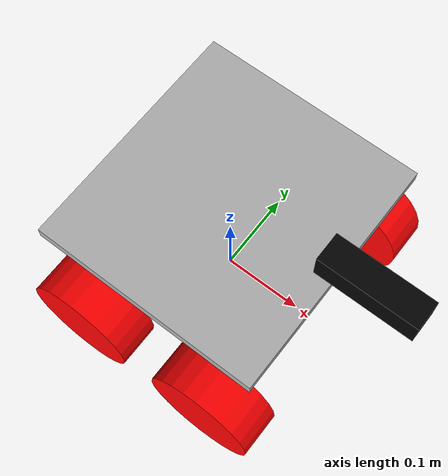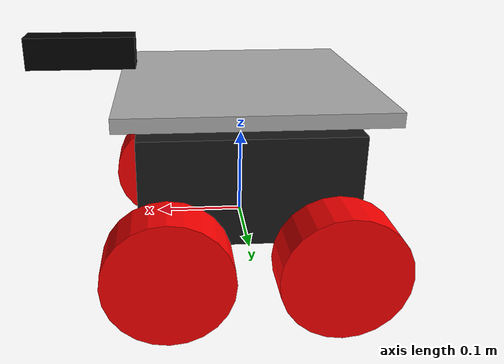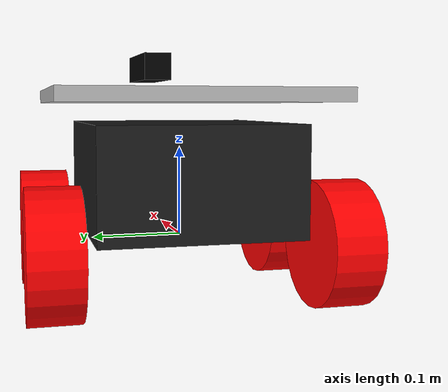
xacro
<?xml version="1.0"?>
<robot name="wifibot_lab_v4" xmlns:xacro="http://www.ros.org/wiki/xacro">

  <!-- Main Wifibot chassis -->
  <xacro:include filename="$(find wifibot_description)/urdf/wifibot_base.xacro"/>

  <!-- Simulated ZED 2i style camera -->
  <xacro:include filename="$(find wifibot_description)/urdf/simulated_zed2i.xacro"/>

</robot>

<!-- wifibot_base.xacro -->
<robot xmlns:xacro="http://www.ros.org/wiki/xacro">

  <!-- Châssis Wifibot Lab V4 -->
  <xacro:property name="base_length" value="0.32"/>
  <xacro:property name="base_width" value="0.37"/>
  <xacro:property name="base_height" value="0.15"/>
  <xacro:property name="wheel_radius" value="0.069"/>
  <xacro:property name="wheel_width" value="0.055"/>

  <link name="base_footprint"/>

  <joint name="base_footprint_joint" type="fixed">
    <parent link="base_footprint"/>
    <child link="base_link"/>
    <origin xyz="0 0 0.069" rpy="0 0 0"/>
  </joint>

  <link name="base_link">
    <visual>
      <geometry><box size="0.24 0.22 0.12"/></geometry>
      <material name="wifibot_dark_gray"><color rgba="0.10 0.10 0.10 1.0"/></material>
    </visual>
    <collision><geometry><box size="0.24 0.22 0.12"/></geometry></collision>
    <inertial>
      <mass value="3.8"/>
      <origin xyz="0 0 0" rpy="0 0 0"/>
      <inertia ixx="0.0505" ixy="0" ixz="0" iyy="0.0394" iyz="0" izz="0.0757"/>
    </inertial>
  </link>

  <link name="top_plate_link">
    <visual>
      <geometry><box size="0.28 0.30 0.015"/></geometry>
      <material name="wifibot_silver"><color rgba="0.70 0.70 0.70 1.0"/></material>
    </visual>
    <collision><geometry><box size="0.28 0.30 0.015"/></geometry></collision>
    <inertial>
      <mass value="0.3"/>
      <origin xyz="0 0 0" rpy="0 0 0"/>
      <inertia ixx="0.003" ixy="0" ixz="0" iyy="0.003" iyz="0" izz="0.004"/>
    </inertial>
  </link>

  <joint name="top_plate_joint" type="fixed">
    <parent link="base_link"/>
    <child link="top_plate_link"/>
    <origin xyz="0 0 0.09" rpy="0 0 0"/>
</joint>

  <xacro:macro name="wheel" params="prefix x y">
    <link name="${prefix}_wheel_link">
      <visual>
        <origin xyz="0 0 0" rpy="1.57079632679 0 0"/>
        <geometry><cylinder radius="${wheel_radius}" length="${wheel_width}"/></geometry>
        <material name="wifibot_black"><color rgba="1 0 0 1"/></material>
      </visual>
      <collision>
        <origin xyz="0 0 0" rpy="1.57079632679 0 0"/>
        <geometry><cylinder radius="${wheel_radius}" length="${wheel_width}"/></geometry>
      </collision>
      <inertial>
        <mass value="0.25"/>
        <origin xyz="0 0 0" rpy="0 0 0"/>
        <inertia ixx="0.00037" ixy="0" ixz="0" iyy="0.00070" iyz="0" izz="0.00037"/>
      </inertial>
    </link>
    <joint name="${prefix}_wheel_joint" type="continuous">
      <parent link="base_link"/>
      <child link="${prefix}_wheel_link"/>
      <origin xyz="${x} ${y} ${-wheel_radius}"
        rpy="0 0 0"/>
      <axis xyz="0 1 0"/>
    </joint>
  </xacro:macro>

<xacro:wheel prefix="front_left"
             x="0.09"
             y="0.15"/>

<xacro:wheel prefix="rear_left"
             x="-0.09"
             y="0.15"/>

<xacro:wheel prefix="front_right"
             x="0.09"
             y="-0.15"/>

<xacro:wheel prefix="rear_right"
             x="-0.09"
             y="-0.15"/>

  <gazebo reference="front_left_wheel_link"><mu1>1.0</mu1><mu2>1.0</mu2></gazebo>
  <gazebo reference="rear_left_wheel_link"><mu1>1.0</mu1><mu2>1.0</mu2></gazebo>
  <gazebo reference="front_right_wheel_link"><mu1>1.0</mu1><mu2>1.0</mu2></gazebo>
  <gazebo reference="rear_right_wheel_link"><mu1>1.0</mu1><mu2>1.0</mu2></gazebo>

  <gazebo>
  <plugin name="wifibot_four_wheel_diff_drive"
          filename="libgazebo_ros_diff_drive.so">

    <ros>
      <namespace>/</namespace>
    </ros>

    <update_rate>50</update_rate>

    <!-- Deux paires de roues -->
    <num_wheel_pairs>2</num_wheel_pairs>

    <!-- Première paire : roues avant, Deuxième paire : roues arrière -->
    <left_joint>front_left_wheel_joint</left_joint>
    <left_joint>rear_left_wheel_joint</left_joint>

    <right_joint>front_right_wheel_joint</right_joint>
    <right_joint>rear_right_wheel_joint</right_joint>

    <!-- Chaque paire de roues doit correspondre à un paramètre -->
    <wheel_separation>0.30</wheel_separation>
    <wheel_separation>0.30</wheel_separation>

    <wheel_diameter>0.138</wheel_diameter>
    <wheel_diameter>0.138</wheel_diameter>

    <max_wheel_torque>20.0</max_wheel_torque>
    <max_wheel_acceleration>2.0</max_wheel_acceleration>

    <command_topic>cmd_vel</command_topic>
    <odometry_topic>odom</odometry_topic>
    <odometry_frame>odom</odometry_frame>
    <robot_base_frame>base_footprint</robot_base_frame>

    <publish_odom>true</publish_odom>
    <publish_odom_tf>true</publish_odom_tf>
    <publish_wheel_tf>true</publish_wheel_tf>

  </plugin>
</gazebo>

</robot>

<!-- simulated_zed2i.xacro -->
<robot xmlns:xacro="http://www.ros.org/wiki/xacro">

  <!-- Approximate ZED 2i geometry and mounting pose -->
  <xacro:property name="camera_x" value="0.18"/>
  <xacro:property name="camera_y" value="0.00"/>
  <xacro:property name="camera_z" value="0.13"/>
  <xacro:property name="camera_length" value="0.12"/>
  <xacro:property name="camera_width" value="0.035"/>
  <xacro:property name="camera_height" value="0.035"/>
  <xacro:property name="camera_mass" value="0.15"/>
  <xacro:property name="stereo_half_baseline" value="0.06"/>

  <!-- Physical camera body -->
  <link name="camera_link">
    <visual>
      <origin xyz="0 0 0" rpy="0 0 0"/>
      <geometry>
        <box size="${camera_length} ${camera_width} ${camera_height}"/>
      </geometry>
      <material name="camera_dark">
        <color rgba="0.01 0.01 0.01 1.0"/>
      </material>
    </visual>
    <collision>
      <origin xyz="0 0 0" rpy="0 0 0"/>
      <geometry>
        <box size="${camera_length} ${camera_width} ${camera_height}"/>
      </geometry>
    </collision>
    <inertial>
      <mass value="${camera_mass}"/>
      <origin xyz="0 0 0" rpy="0 0 0"/>
      <inertia ixx="0.00005" ixy="0.0" ixz="0.0"
               iyy="0.00015" iyz="0.0" izz="0.00015"/>
    </inertial>
  </link>

  <joint name="camera_joint" type="fixed">
    <parent link="base_link"/>
    <child link="camera_link"/>
    <origin xyz="${camera_x} ${camera_y} ${camera_z}" rpy="0 0 0"/>
  </joint>

  <!-- Center optical frame: Z forward, X right, Y down -->
  <link name="camera_optical_frame"/>
  <joint name="camera_optical_joint" type="fixed">
    <parent link="camera_link"/>
    <child link="camera_optical_frame"/>
    <origin xyz="0 0 0" rpy="-1.57079632679 0 -1.57079632679"/>
  </joint>

  <!-- Physical left and right camera frames -->
  <link name="camera_left_link"/>
  <joint name="camera_left_joint" type="fixed">
    <parent link="camera_link"/>
    <child link="camera_left_link"/>
    <origin xyz="0 ${stereo_half_baseline} 0" rpy="0 0 0"/>
  </joint>

  <link name="camera_right_link"/>
  <joint name="camera_right_joint" type="fixed">
    <parent link="camera_link"/>
    <child link="camera_right_link"/>
    <origin xyz="0 ${-stereo_half_baseline} 0" rpy="0 0 0"/>
  </joint>

  <link name="camera_left_optical_frame"/>
  <joint name="camera_left_optical_joint" type="fixed">
    <parent link="camera_left_link"/>
    <child link="camera_left_optical_frame"/>
    <origin xyz="0 0 0" rpy="-1.57079632679 0 -1.57079632679"/>
  </joint>

  <link name="camera_right_optical_frame"/>
  <joint name="camera_right_optical_joint" type="fixed">
    <parent link="camera_right_link"/>
    <child link="camera_right_optical_frame"/>
    <origin xyz="0 0 0" rpy="-1.57079632679 0 -1.57079632679"/>
  </joint>

  <!-- IMU frame -->
  <link name="camera_imu_link"/>
  <joint name="camera_imu_joint" type="fixed">
    <parent link="camera_link"/>
    <child link="camera_imu_link"/>
    <origin xyz="0 0 0" rpy="0 0 0"/>
  </joint>

  <!-- RGB-D sensor. One depth sensor provides RGB, depth and point cloud. -->
  <gazebo reference="camera_link">
    <sensor name="zed2i_rgbd_sensor" type="depth">
      <always_on>true</always_on>
      <visualize>true</visualize>
      <update_rate>30.0</update_rate>
      <camera name="zed2i_rgbd_camera">
        <horizontal_fov>1.57079632679</horizontal_fov>
        <image>
          <width>640</width>
          <height>480</height>
          <format>R8G8B8</format>
        </image>
        <clip>
          <near>0.10</near>
          <far>20.0</far>
        </clip>
      </camera>
      <plugin name="zed2i_rgbd_ros_plugin" filename="libgazebo_ros_camera.so">
        <ros>
          <namespace>/camera</namespace>
          <remapping>image_raw:=color/image_raw</remapping>
          <remapping>camera_info:=color/camera_info</remapping>
          <remapping>depth/image_raw:=depth/image_raw</remapping>
          <remapping>depth/camera_info:=depth/camera_info</remapping>
          <remapping>points:=depth/points</remapping>
        </ros>
        <camera_name>zed2i</camera_name>
        <frame_name>camera_optical_frame</frame_name>
        <min_depth>0.10</min_depth>
        <max_depth>20.0</max_depth>
      </plugin>
    </sensor>
  </gazebo>

  <!-- Simulated IMU -->
  <gazebo reference="camera_imu_link">
    <sensor name="zed2i_imu_sensor" type="imu">
      <always_on>true</always_on>
      <update_rate>200.0</update_rate>
      <visualize>false</visualize>
      <imu>
        <angular_velocity>
          <x><noise type="gaussian"><mean>0.0</mean><stddev>0.0002</stddev></noise></x>
          <y><noise type="gaussian"><mean>0.0</mean><stddev>0.0002</stddev></noise></y>
          <z><noise type="gaussian"><mean>0.0</mean><stddev>0.0002</stddev></noise></z>
        </angular_velocity>
        <linear_acceleration>
          <x><noise type="gaussian"><mean>0.0</mean><stddev>0.017</stddev></noise></x>
          <y><noise type="gaussian"><mean>0.0</mean><stddev>0.017</stddev></noise></y>
          <z><noise type="gaussian"><mean>0.0</mean><stddev>0.017</stddev></noise></z>
        </linear_acceleration>
      </imu>
      <plugin name="zed2i_imu_ros_plugin" filename="libgazebo_ros_imu_sensor.so">
        <ros>
          <namespace>/</namespace>
          <remapping>~/out:=imu/data</remapping>
        </ros>
        <initial_orientation_as_reference>false</initial_orientation_as_reference>
      </plugin>
    </sensor>
  </gazebo>

</robot>
